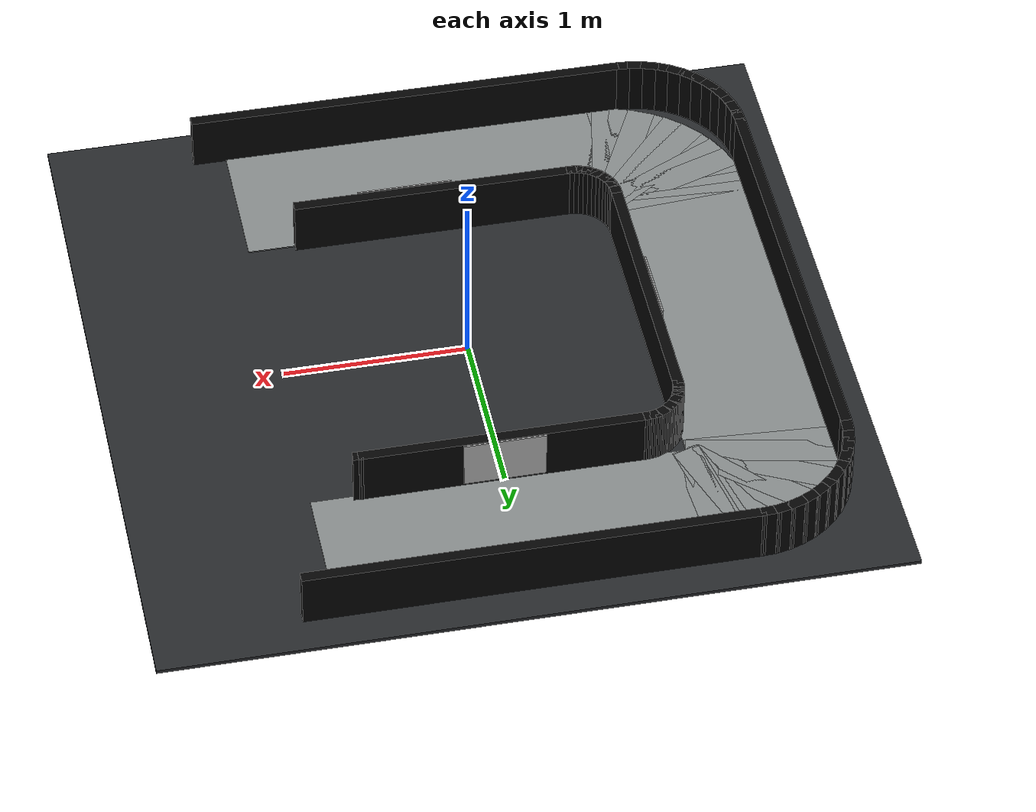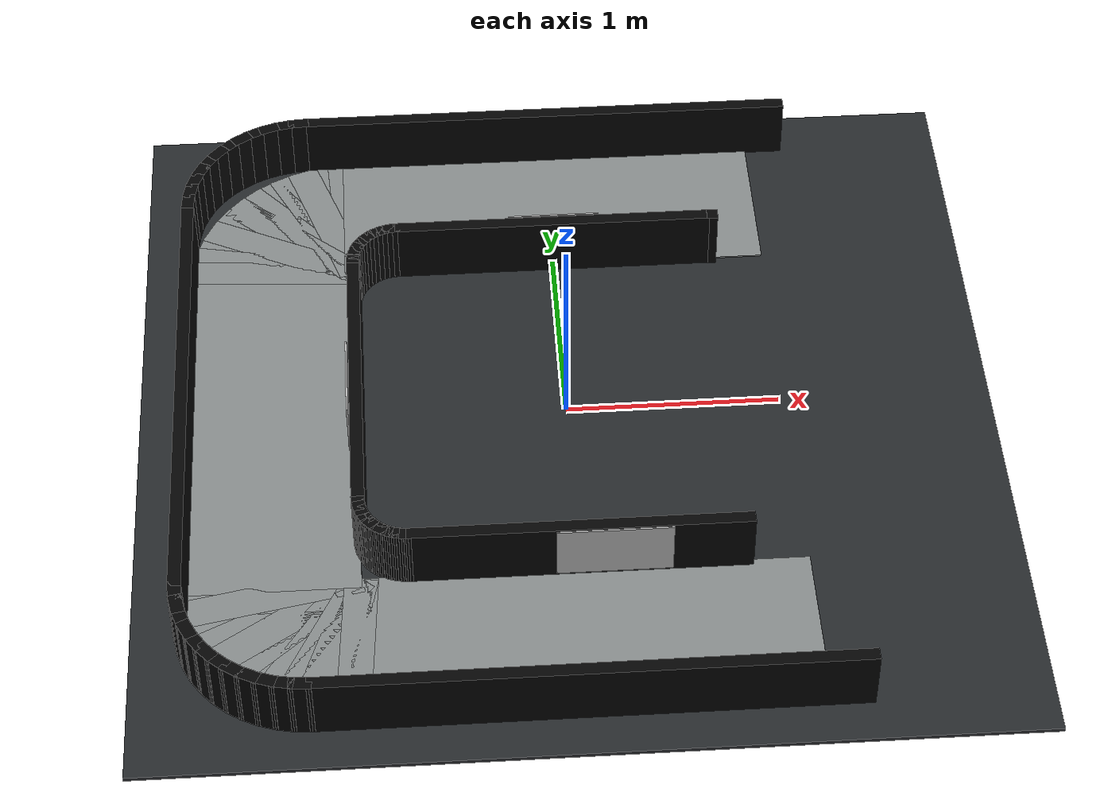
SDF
<sdf version="1.6">
 <world name="raicom_safe_city">
  <include><uri>model://sun</uri></include>
  <model name="safe_city_wall_track_80cm">
   <static>true</static>
   <link name="floor_4m">
    <pose>0.0000 0.0000 -0.0110 0 0 0.000000</pose>
    <collision name="collision"><geometry><box><size>4.0000 4.0000 0.0200</size></box></geometry></collision>
    <visual name="visual">
     <geometry><box><size>4.0000 4.0000 0.0200</size></box></geometry>
     <material><ambient>0.160 0.170 0.180 1.000</ambient><diffuse>0.160 0.170 0.180 1.000</diffuse></material>
    </visual>
   </link>
   <link name="road_tile_13">
    <pose>0.0000 1.3800 0.0020 0 0 3.141593</pose>
    <visual name="visual">
     <geometry><box><size>2.0600 0.8000 0.0080</size></box></geometry>
     <material><ambient>0.540 0.560 0.560 1.000</ambient><diffuse>0.540 0.560 0.560 1.000</diffuse></material>
    </visual>
   </link>
   <link name="road_tile_14">
    <pose>-1.0061 1.3783 0.0020 0 0 -3.076143</pose>
    <visual name="visual">
     <geometry><box><size>0.1523 0.8000 0.0080</size></box></geometry>
     <material><ambient>0.540 0.560 0.560 1.000</ambient><diffuse>0.540 0.560 0.560 1.000</diffuse></material>
    </visual>
   </link>
   <link name="road_tile_15">
    <pose>-1.0579 1.3715 0.0020 0 0 -2.945243</pose>
    <visual name="visual">
     <geometry><box><size>0.1523 0.8000 0.0080</size></box></geometry>
     <material><ambient>0.540 0.560 0.560 1.000</ambient><diffuse>0.540 0.560 0.560 1.000</diffuse></material>
    </visual>
   </link>
   <link name="road_tile_16">
    <pose>-1.1083 1.3580 0.0020 0 0 -2.814343</pose>
    <visual name="visual">
     <geometry><box><size>0.1523 0.8000 0.0080</size></box></geometry>
     <material><ambient>0.540 0.560 0.560 1.000</ambient><diffuse>0.540 0.560 0.560 1.000</diffuse></material>
    </visual>
   </link>
   <link name="road_tile_17">
    <pose>-1.1565 1.3380 0.0020 0 0 -2.683444</pose>
    <visual name="visual">
     <geometry><box><size>0.1523 0.8000 0.0080</size></box></geometry>
     <material><ambient>0.540 0.560 0.560 1.000</ambient><diffuse>0.540 0.560 0.560 1.000</diffuse></material>
    </visual>
   </link>
   <link name="road_tile_18">
    <pose>-1.2018 1.3119 0.0020 0 0 -2.552544</pose>
    <visual name="visual">
     <geometry><box><size>0.1523 0.8000 0.0080</size></box></geometry>
     <material><ambient>0.540 0.560 0.560 1.000</ambient><diffuse>0.540 0.560 0.560 1.000</diffuse></material>
    </visual>
   </link>
   <link name="road_tile_19">
    <pose>-1.2432 1.2801 0.0020 0 0 -2.421644</pose>
    <visual name="visual">
     <geometry><box><size>0.1523 0.8000 0.0080</size></box></geometry>
     <material><ambient>0.540 0.560 0.560 1.000</ambient><diffuse>0.540 0.560 0.560 1.000</diffuse></material>
    </visual>
   </link>
   <link name="road_tile_20">
    <pose>-1.2801 1.2432 0.0020 0 0 -2.290745</pose>
    <visual name="visual">
     <geometry><box><size>0.1523 0.8000 0.0080</size></box></geometry>
     <material><ambient>0.540 0.560 0.560 1.000</ambient><diffuse>0.540 0.560 0.560 1.000</diffuse></material>
    </visual>
   </link>
   <link name="road_tile_21">
    <pose>-1.3119 1.2018 0.0020 0 0 -2.159845</pose>
    <visual name="visual">
     <geometry><box><size>0.1523 0.8000 0.0080</size></box></geometry>
     <material><ambient>0.540 0.560 0.560 1.000</ambient><diffuse>0.540 0.560 0.560 1.000</diffuse></material>
    </visual>
   </link>
   <link name="road_tile_22">
    <pose>-1.3380 1.1565 0.0020 0 0 -2.028945</pose>
    <visual name="visual">
     <geometry><box><size>0.1523 0.8000 0.0080</size></box></geometry>
     <material><ambient>0.540 0.560 0.560 1.000</ambient><diffuse>0.540 0.560 0.560 1.000</diffuse></material>
    </visual>
   </link>
   <link name="road_tile_23">
    <pose>-1.3580 1.1083 0.0020 0 0 -1.898046</pose>
    <visual name="visual">
     <geometry><box><size>0.1523 0.8000 0.0080</size></box></geometry>
     <material><ambient>0.540 0.560 0.560 1.000</ambient><diffuse>0.540 0.560 0.560 1.000</diffuse></material>
    </visual>
   </link>
   <link name="road_tile_24">
    <pose>-1.3715 1.0579 0.0020 0 0 -1.767146</pose>
    <visual name="visual">
     <geometry><box><size>0.1523 0.8000 0.0080</size></box></geometry>
     <material><ambient>0.540 0.560 0.560 1.000</ambient><diffuse>0.540 0.560 0.560 1.000</diffuse></material>
    </visual>
   </link>
   <link name="road_tile_25">
    <pose>-1.3783 1.0061 0.0020 0 0 -1.636246</pose>
    <visual name="visual">
     <geometry><box><size>0.1523 0.8000 0.0080</size></box></geometry>
     <material><ambient>0.540 0.560 0.560 1.000</ambient><diffuse>0.540 0.560 0.560 1.000</diffuse></material>
    </visual>
   </link>
   <link name="road_tile_26">
    <pose>-1.3800 0.0000 0.0020 0 0 -1.570796</pose>
    <visual name="visual">
     <geometry><box><size>2.0600 0.8000 0.0080</size></box></geometry>
     <material><ambient>0.540 0.560 0.560 1.000</ambient><diffuse>0.540 0.560 0.560 1.000</diffuse></material>
    </visual>
   </link>
   <link name="road_tile_27">
    <pose>-1.3783 -1.0061 0.0020 0 0 -1.505346</pose>
    <visual name="visual">
     <geometry><box><size>0.1523 0.8000 0.0080</size></box></geometry>
     <material><ambient>0.540 0.560 0.560 1.000</ambient><diffuse>0.540 0.560 0.560 1.000</diffuse></material>
    </visual>
   </link>
   <link name="road_tile_28">
    <pose>-1.3715 -1.0579 0.0020 0 0 -1.374447</pose>
    <visual name="visual">
     <geometry><box><size>0.1523 0.8000 0.0080</size></box></geometry>
     <material><ambient>0.540 0.560 0.560 1.000</ambient><diffuse>0.540 0.560 0.560 1.000</diffuse></material>
    </visual>
   </link>
   <link name="road_tile_29">
    <pose>-1.3580 -1.1083 0.0020 0 0 -1.243547</pose>
    <visual name="visual">
     <geometry><box><size>0.1523 0.8000 0.0080</size></box></geometry>
     <material><ambient>0.540 0.560 0.560 1.000</ambient><diffuse>0.540 0.560 0.560 1.000</diffuse></material>
    </visual>
   </link>
   <link name="road_tile_30">
    <pose>-1.3380 -1.1565 0.0020 0 0 -1.112647</pose>
    <visual name="visual">
     <geometry><box><size>0.1523 0.8000 0.0080</size></box></geometry>
     <material><ambient>0.540 0.560 0.560 1.000</ambient><diffuse>0.540 0.560 0.560 1.000</diffuse></material>
    </visual>
   </link>
   <link name="road_tile_31">
    <pose>-1.3119 -1.2018 0.0020 0 0 -0.981748</pose>
    <visual name="visual">
     <geometry><box><size>0.1523 0.8000 0.0080</size></box></geometry>
     <material><ambient>0.540 0.560 0.560 1.000</ambient><diffuse>0.540 0.560 0.560 1.000</diffuse></material>
    </visual>
   </link>
   <link name="road_tile_32">
    <pose>-1.2801 -1.2432 0.0020 0 0 -0.850848</pose>
    <visual name="visual">
     <geometry><box><size>0.1523 0.8000 0.0080</size></box></geometry>
     <material><ambient>0.540 0.560 0.560 1.000</ambient><diffuse>0.540 0.560 0.560 1.000</diffuse></material>
    </visual>
   </link>
   <link name="road_tile_33">
    <pose>-1.2432 -1.2801 0.0020 0 0 -0.719948</pose>
    <visual name="visual">
     <geometry><box><size>0.1523 0.8000 0.0080</size></box></geometry>
     <material><ambient>0.540 0.560 0.560 1.000</ambient><diffuse>0.540 0.560 0.560 1.000</diffuse></material>
    </visual>
   </link>
   <link name="road_tile_34">
    <pose>-1.2018 -1.3119 0.0020 0 0 -0.589049</pose>
    <visual name="visual">
     <geometry><box><size>0.1523 0.8000 0.0080</size></box></geometry>
     <material><ambient>0.540 0.560 0.560 1.000</ambient><diffuse>0.540 0.560 0.560 1.000</diffuse></material>
    </visual>
   </link>
   <link name="road_tile_35">
    <pose>-1.1565 -1.3380 0.0020 0 0 -0.458149</pose>
    <visual name="visual">
     <geometry><box><size>0.1523 0.8000 0.0080</size></box></geometry>
     <material><ambient>0.540 0.560 0.560 1.000</ambient><diffuse>0.540 0.560 0.560 1.000</diffuse></material>
    </visual>
   </link>
   <link name="road_tile_36">
    <pose>-1.1083 -1.3580 0.0020 0 0 -0.327249</pose>
    <visual name="visual">
     <geometry><box><size>0.1523 0.8000 0.0080</size></box></geometry>
     <material><ambient>0.540 0.560 0.560 1.000</ambient><diffuse>0.540 0.560 0.560 1.000</diffuse></material>
    </visual>
   </link>
   <link name="road_tile_37">
    <pose>-1.0579 -1.3715 0.0020 0 0 -0.196350</pose>
    <visual name="visual">
     <geometry><box><size>0.1523 0.8000 0.0080</size></box></geometry>
     <material><ambient>0.540 0.560 0.560 1.000</ambient><diffuse>0.540 0.560 0.560 1.000</diffuse></material>
    </visual>
   </link>
   <link name="road_tile_38">
    <pose>-1.0061 -1.3783 0.0020 0 0 -0.065450</pose>
    <visual name="visual">
     <geometry><box><size>0.1523 0.8000 0.0080</size></box></geometry>
     <material><ambient>0.540 0.560 0.560 1.000</ambient><diffuse>0.540 0.560 0.560 1.000</diffuse></material>
    </visual>
   </link>
   <link name="road_tile_39">
    <pose>-0.0000 -1.3800 0.0020 0 0 0.000000</pose>
    <visual name="visual">
     <geometry><box><size>2.0600 0.8000 0.0080</size></box></geometry>
     <material><ambient>0.540 0.560 0.560 1.000</ambient><diffuse>0.540 0.560 0.560 1.000</diffuse></material>
    </visual>
   </link>
   <link name="photo_trash_food_waste">
    <pose>0.0000 1.0200 0.1650 0 0 0.000000</pose>
    <visual name="visual">
     <geometry><box><size>0.4400 0.0080 0.2700</size></box></geometry>
     <material>
      <script>
       <uri>model://safe_city_photo_targets/materials/scripts</uri>
       <uri>model://safe_city_photo_targets/materials/textures</uri>
       <name>SafeCityPhotoTargets/TrashFoodWaste</name>
      </script>
     </material>
    </visual>
   </link>
   <link name="photo_crowd_people">
    <pose>-1.0200 0.0000 0.1650 0 0 1.570796</pose>
    <visual name="visual">
     <geometry><box><size>0.4400 0.0080 0.2700</size></box></geometry>
     <material>
      <script>
       <uri>model://safe_city_photo_targets/materials/scripts</uri>
       <uri>model://safe_city_photo_targets/materials/textures</uri>
       <name>SafeCityPhotoTargets/CrowdPeople</name>
      </script>
     </material>
    </visual>
   </link>
   <link name="photo_building_fire">
    <pose>0.1500 -1.0200 0.1650 0 0 0.000000</pose>
    <visual name="visual">
     <geometry><box><size>0.5200 0.0080 0.2700</size></box></geometry>
     <material>
      <script>
       <uri>model://safe_city_photo_targets/materials/scripts</uri>
       <uri>model://safe_city_photo_targets/materials/textures</uri>
       <name>SafeCityPhotoTargets/BuildingFire</name>
      </script>
     </material>
    </visual>
   </link>
   <link name="track_wall_13">
    <pose>0.0000 1.7800 0.1500 0 0 3.141593</pose>
    <collision name="collision"><geometry><box><size>2.4250 0.0600 0.3000</size></box></geometry></collision>
    <visual name="visual">
     <geometry><box><size>2.4250 0.0600 0.3000</size></box></geometry>
     <material><ambient>0.020 0.020 0.020 1.000</ambient><diffuse>0.020 0.020 0.020 1.000</diffuse></material>
    </visual>
   </link>
   <link name="track_wall_14">
    <pose>-1.2379 1.7775 0.1500 0 0 -3.076143</pose>
    <collision name="collision"><geometry><box><size>0.1009 0.0600 0.3000</size></box></geometry></collision>
    <visual name="visual">
     <geometry><box><size>0.1009 0.0600 0.3000</size></box></geometry>
     <material><ambient>0.020 0.020 0.020 1.000</ambient><diffuse>0.020 0.020 0.020 1.000</diffuse></material>
    </visual>
   </link>
   <link name="track_wall_15">
    <pose>-1.3129 1.7676 0.1500 0 0 -2.945243</pose>
    <collision name="collision"><geometry><box><size>0.1009 0.0600 0.3000</size></box></geometry></collision>
    <visual name="visual">
     <geometry><box><size>0.1009 0.0600 0.3000</size></box></geometry>
     <material><ambient>0.020 0.020 0.020 1.000</ambient><diffuse>0.020 0.020 0.020 1.000</diffuse></material>
    </visual>
   </link>
   <link name="track_wall_16">
    <pose>-1.3860 1.7480 0.1500 0 0 -2.814343</pose>
    <collision name="collision"><geometry><box><size>0.1009 0.0600 0.3000</size></box></geometry></collision>
    <visual name="visual">
     <geometry><box><size>0.1009 0.0600 0.3000</size></box></geometry>
     <material><ambient>0.020 0.020 0.020 1.000</ambient><diffuse>0.020 0.020 0.020 1.000</diffuse></material>
    </visual>
   </link>
   <link name="track_wall_17">
    <pose>-1.4560 1.7191 0.1500 0 0 -2.683444</pose>
    <collision name="collision"><geometry><box><size>0.1009 0.0600 0.3000</size></box></geometry></collision>
    <visual name="visual">
     <geometry><box><size>0.1009 0.0600 0.3000</size></box></geometry>
     <material><ambient>0.020 0.020 0.020 1.000</ambient><diffuse>0.020 0.020 0.020 1.000</diffuse></material>
    </visual>
   </link>
   <link name="track_wall_18">
    <pose>-1.5215 1.6812 0.1500 0 0 -2.552544</pose>
    <collision name="collision"><geometry><box><size>0.1009 0.0600 0.3000</size></box></geometry></collision>
    <visual name="visual">
     <geometry><box><size>0.1009 0.0600 0.3000</size></box></geometry>
     <material><ambient>0.020 0.020 0.020 1.000</ambient><diffuse>0.020 0.020 0.020 1.000</diffuse></material>
    </visual>
   </link>
   <link name="track_wall_19">
    <pose>-1.5816 1.6351 0.1500 0 0 -2.421644</pose>
    <collision name="collision"><geometry><box><size>0.1009 0.0600 0.3000</size></box></geometry></collision>
    <visual name="visual">
     <geometry><box><size>0.1009 0.0600 0.3000</size></box></geometry>
     <material><ambient>0.020 0.020 0.020 1.000</ambient><diffuse>0.020 0.020 0.020 1.000</diffuse></material>
    </visual>
   </link>
   <link name="track_wall_20">
    <pose>-1.6351 1.5816 0.1500 0 0 -2.290745</pose>
    <collision name="collision"><geometry><box><size>0.1009 0.0600 0.3000</size></box></geometry></collision>
    <visual name="visual">
     <geometry><box><size>0.1009 0.0600 0.3000</size></box></geometry>
     <material><ambient>0.020 0.020 0.020 1.000</ambient><diffuse>0.020 0.020 0.020 1.000</diffuse></material>
    </visual>
   </link>
   <link name="track_wall_21">
    <pose>-1.6812 1.5215 0.1500 0 0 -2.159845</pose>
    <collision name="collision"><geometry><box><size>0.1009 0.0600 0.3000</size></box></geometry></collision>
    <visual name="visual">
     <geometry><box><size>0.1009 0.0600 0.3000</size></box></geometry>
     <material><ambient>0.020 0.020 0.020 1.000</ambient><diffuse>0.020 0.020 0.020 1.000</diffuse></material>
    </visual>
   </link>
   <link name="track_wall_22">
    <pose>-1.7191 1.4560 0.1500 0 0 -2.028945</pose>
    <collision name="collision"><geometry><box><size>0.1009 0.0600 0.3000</size></box></geometry></collision>
    <visual name="visual">
     <geometry><box><size>0.1009 0.0600 0.3000</size></box></geometry>
     <material><ambient>0.020 0.020 0.020 1.000</ambient><diffuse>0.020 0.020 0.020 1.000</diffuse></material>
    </visual>
   </link>
   <link name="track_wall_23">
    <pose>-1.7480 1.3860 0.1500 0 0 -1.898046</pose>
    <collision name="collision"><geometry><box><size>0.1009 0.0600 0.3000</size></box></geometry></collision>
    <visual name="visual">
     <geometry><box><size>0.1009 0.0600 0.3000</size></box></geometry>
     <material><ambient>0.020 0.020 0.020 1.000</ambient><diffuse>0.020 0.020 0.020 1.000</diffuse></material>
    </visual>
   </link>
   <link name="track_wall_24">
    <pose>-1.7676 1.3129 0.1500 0 0 -1.767146</pose>
    <collision name="collision"><geometry><box><size>0.1009 0.0600 0.3000</size></box></geometry></collision>
    <visual name="visual">
     <geometry><box><size>0.1009 0.0600 0.3000</size></box></geometry>
     <material><ambient>0.020 0.020 0.020 1.000</ambient><diffuse>0.020 0.020 0.020 1.000</diffuse></material>
    </visual>
   </link>
   <link name="track_wall_25">
    <pose>-1.7775 1.2379 0.1500 0 0 -1.636246</pose>
    <collision name="collision"><geometry><box><size>0.1009 0.0600 0.3000</size></box></geometry></collision>
    <visual name="visual">
     <geometry><box><size>0.1009 0.0600 0.3000</size></box></geometry>
     <material><ambient>0.020 0.020 0.020 1.000</ambient><diffuse>0.020 0.020 0.020 1.000</diffuse></material>
    </visual>
   </link>
   <link name="track_wall_26">
    <pose>-1.7800 0.0000 0.1500 0 0 -1.570796</pose>
    <collision name="collision"><geometry><box><size>2.4250 0.0600 0.3000</size></box></geometry></collision>
    <visual name="visual">
     <geometry><box><size>2.4250 0.0600 0.3000</size></box></geometry>
     <material><ambient>0.020 0.020 0.020 1.000</ambient><diffuse>0.020 0.020 0.020 1.000</diffuse></material>
    </visual>
   </link>
   <link name="track_wall_27">
    <pose>-1.7775 -1.2379 0.1500 0 0 -1.505346</pose>
    <collision name="collision"><geometry><box><size>0.1009 0.0600 0.3000</size></box></geometry></collision>
    <visual name="visual">
     <geometry><box><size>0.1009 0.0600 0.3000</size></box></geometry>
     <material><ambient>0.020 0.020 0.020 1.000</ambient><diffuse>0.020 0.020 0.020 1.000</diffuse></material>
    </visual>
   </link>
   <link name="track_wall_28">
    <pose>-1.7676 -1.3129 0.1500 0 0 -1.374447</pose>
    <collision name="collision"><geometry><box><size>0.1009 0.0600 0.3000</size></box></geometry></collision>
    <visual name="visual">
     <geometry><box><size>0.1009 0.0600 0.3000</size></box></geometry>
     <material><ambient>0.020 0.020 0.020 1.000</ambient><diffuse>0.020 0.020 0.020 1.000</diffuse></material>
    </visual>
   </link>
   <link name="track_wall_29">
    <pose>-1.7480 -1.3860 0.1500 0 0 -1.243547</pose>
    <collision name="collision"><geometry><box><size>0.1009 0.0600 0.3000</size></box></geometry></collision>
    <visual name="visual">
     <geometry><box><size>0.1009 0.0600 0.3000</size></box></geometry>
     <material><ambient>0.020 0.020 0.020 1.000</ambient><diffuse>0.020 0.020 0.020 1.000</diffuse></material>
    </visual>
   </link>
   <link name="track_wall_30">
    <pose>-1.7191 -1.4560 0.1500 0 0 -1.112647</pose>
    <collision name="collision"><geometry><box><size>0.1009 0.0600 0.3000</size></box></geometry></collision>
    <visual name="visual">
     <geometry><box><size>0.1009 0.0600 0.3000</size></box></geometry>
     <material><ambient>0.020 0.020 0.020 1.000</ambient><diffuse>0.020 0.020 0.020 1.000</diffuse></material>
    </visual>
   </link>
   <link name="track_wall_31">
    <pose>-1.6812 -1.5215 0.1500 0 0 -0.981748</pose>
    <collision name="collision"><geometry><box><size>0.1009 0.0600 0.3000</size></box></geometry></collision>
    <visual name="visual">
     <geometry><box><size>0.1009 0.0600 0.3000</size></box></geometry>
     <material><ambient>0.020 0.020 0.020 1.000</ambient><diffuse>0.020 0.020 0.020 1.000</diffuse></material>
    </visual>
   </link>
   <link name="track_wall_32">
    <pose>-1.6351 -1.5816 0.1500 0 0 -0.850848</pose>
    <collision name="collision"><geometry><box><size>0.1009 0.0600 0.3000</size></box></geometry></collision>
    <visual name="visual">
     <geometry><box><size>0.1009 0.0600 0.3000</size></box></geometry>
     <material><ambient>0.020 0.020 0.020 1.000</ambient><diffuse>0.020 0.020 0.020 1.000</diffuse></material>
    </visual>
   </link>
   <link name="track_wall_33">
    <pose>-1.5816 -1.6351 0.1500 0 0 -0.719948</pose>
    <collision name="collision"><geometry><box><size>0.1009 0.0600 0.3000</size></box></geometry></collision>
    <visual name="visual">
     <geometry><box><size>0.1009 0.0600 0.3000</size></box></geometry>
     <material><ambient>0.020 0.020 0.020 1.000</ambient><diffuse>0.020 0.020 0.020 1.000</diffuse></material>
    </visual>
   </link>
   <link name="track_wall_34">
    <pose>-1.5215 -1.6812 0.1500 0 0 -0.589049</pose>
    <collision name="collision"><geometry><box><size>0.1009 0.0600 0.3000</size></box></geometry></collision>
    <visual name="visual">
     <geometry><box><size>0.1009 0.0600 0.3000</size></box></geometry>
     <material><ambient>0.020 0.020 0.020 1.000</ambient><diffuse>0.020 0.020 0.020 1.000</diffuse></material>
    </visual>
   </link>
   <link name="track_wall_35">
    <pose>-1.4560 -1.7191 0.1500 0 0 -0.458149</pose>
    <collision name="collision"><geometry><box><size>0.1009 0.0600 0.3000</size></box></geometry></collision>
    <visual name="visual">
     <geometry><box><size>0.1009 0.0600 0.3000</size></box></geometry>
     <material><ambient>0.020 0.020 0.020 1.000</ambient><diffuse>0.020 0.020 0.020 1.000</diffuse></material>
    </visual>
   </link>
   <link name="track_wall_36">
    <pose>-1.3860 -1.7480 0.1500 0 0 -0.327249</pose>
    <collision name="collision"><geometry><box><size>0.1009 0.0600 0.3000</size></box></geometry></collision>
    <visual name="visual">
     <geometry><box><size>0.1009 0.0600 0.3000</size></box></geometry>
     <material><ambient>0.020 0.020 0.020 1.000</ambient><diffuse>0.020 0.020 0.020 1.000</diffuse></material>
    </visual>
   </link>
   <link name="track_wall_37">
    <pose>-1.3129 -1.7676 0.1500 0 0 -0.196350</pose>
    <collision name="collision"><geometry><box><size>0.1009 0.0600 0.3000</size></box></geometry></collision>
    <visual name="visual">
     <geometry><box><size>0.1009 0.0600 0.3000</size></box></geometry>
     <material><ambient>0.020 0.020 0.020 1.000</ambient><diffuse>0.020 0.020 0.020 1.000</diffuse></material>
    </visual>
   </link>
   <link name="track_wall_38">
    <pose>-1.2379 -1.7775 0.1500 0 0 -0.065450</pose>
    <collision name="collision"><geometry><box><size>0.1009 0.0600 0.3000</size></box></geometry></collision>
    <visual name="visual">
     <geometry><box><size>0.1009 0.0600 0.3000</size></box></geometry>
     <material><ambient>0.020 0.020 0.020 1.000</ambient><diffuse>0.020 0.020 0.020 1.000</diffuse></material>
    </visual>
   </link>
   <link name="track_wall_39">
    <pose>0.0000 -1.7800 0.1500 0 0 0.000000</pose>
    <collision name="collision"><geometry><box><size>2.4250 0.0600 0.3000</size></box></geometry></collision>
    <visual name="visual">
     <geometry><box><size>2.4250 0.0600 0.3000</size></box></geometry>
     <material><ambient>0.020 0.020 0.020 1.000</ambient><diffuse>0.020 0.020 0.020 1.000</diffuse></material>
    </visual>
   </link>
   <link name="track_wall_64">
    <pose>0.7744 0.9791 0.1500 0 0 3.076143</pose>
    <collision name="collision"><geometry><box><size>0.0538 0.0600 0.3000</size></box></geometry></collision>
    <visual name="visual">
     <geometry><box><size>0.0538 0.0600 0.3000</size></box></geometry>
     <material><ambient>0.020 0.020 0.020 1.000</ambient><diffuse>0.020 0.020 0.020 1.000</diffuse></material>
    </visual>
   </link>
   <link name="track_wall_65">
    <pose>0.0000 0.9800 0.1500 0 0 3.141593</pose>
    <collision name="collision"><geometry><box><size>1.5450 0.0600 0.3000</size></box></geometry></collision>
    <visual name="visual">
     <geometry><box><size>1.5450 0.0600 0.3000</size></box></geometry>
     <material><ambient>0.020 0.020 0.020 1.000</ambient><diffuse>0.020 0.020 0.020 1.000</diffuse></material>
    </visual>
   </link>
   <link name="track_wall_66">
    <pose>-0.7744 0.9791 0.1500 0 0 -3.076143</pose>
    <collision name="collision"><geometry><box><size>0.0538 0.0600 0.3000</size></box></geometry></collision>
    <visual name="visual">
     <geometry><box><size>0.0538 0.0600 0.3000</size></box></geometry>
     <material><ambient>0.020 0.020 0.020 1.000</ambient><diffuse>0.020 0.020 0.020 1.000</diffuse></material>
    </visual>
   </link>
   <link name="track_wall_67">
    <pose>-0.8028 0.9753 0.1500 0 0 -2.945243</pose>
    <collision name="collision"><geometry><box><size>0.0538 0.0600 0.3000</size></box></geometry></collision>
    <visual name="visual">
     <geometry><box><size>0.0538 0.0600 0.3000</size></box></geometry>
     <material><ambient>0.020 0.020 0.020 1.000</ambient><diffuse>0.020 0.020 0.020 1.000</diffuse></material>
    </visual>
   </link>
   <link name="track_wall_68">
    <pose>-0.8306 0.9679 0.1500 0 0 -2.814343</pose>
    <collision name="collision"><geometry><box><size>0.0538 0.0600 0.3000</size></box></geometry></collision>
    <visual name="visual">
     <geometry><box><size>0.0538 0.0600 0.3000</size></box></geometry>
     <material><ambient>0.020 0.020 0.020 1.000</ambient><diffuse>0.020 0.020 0.020 1.000</diffuse></material>
    </visual>
   </link>
   <link name="track_wall_69">
    <pose>-0.8571 0.9569 0.1500 0 0 -2.683444</pose>
    <collision name="collision"><geometry><box><size>0.0538 0.0600 0.3000</size></box></geometry></collision>
    <visual name="visual">
     <geometry><box><size>0.0538 0.0600 0.3000</size></box></geometry>
     <material><ambient>0.020 0.020 0.020 1.000</ambient><diffuse>0.020 0.020 0.020 1.000</diffuse></material>
    </visual>
   </link>
   <link name="track_wall_70">
    <pose>-0.8820 0.9425 0.1500 0 0 -2.552544</pose>
    <collision name="collision"><geometry><box><size>0.0538 0.0600 0.3000</size></box></geometry></collision>
    <visual name="visual">
     <geometry><box><size>0.0538 0.0600 0.3000</size></box></geometry>
     <material><ambient>0.020 0.020 0.020 1.000</ambient><diffuse>0.020 0.020 0.020 1.000</diffuse></material>
    </visual>
   </link>
   <link name="track_wall_71">
    <pose>-0.9047 0.9251 0.1500 0 0 -2.421644</pose>
    <collision name="collision"><geometry><box><size>0.0538 0.0600 0.3000</size></box></geometry></collision>
    <visual name="visual">
     <geometry><box><size>0.0538 0.0600 0.3000</size></box></geometry>
     <material><ambient>0.020 0.020 0.020 1.000</ambient><diffuse>0.020 0.020 0.020 1.000</diffuse></material>
    </visual>
   </link>
   <link name="track_wall_72">
    <pose>-0.9251 0.9047 0.1500 0 0 -2.290745</pose>
    <collision name="collision"><geometry><box><size>0.0538 0.0600 0.3000</size></box></geometry></collision>
    <visual name="visual">
     <geometry><box><size>0.0538 0.0600 0.3000</size></box></geometry>
     <material><ambient>0.020 0.020 0.020 1.000</ambient><diffuse>0.020 0.020 0.020 1.000</diffuse></material>
    </visual>
   </link>
   <link name="track_wall_73">
    <pose>-0.9425 0.8820 0.1500 0 0 -2.159845</pose>
    <collision name="collision"><geometry><box><size>0.0538 0.0600 0.3000</size></box></geometry></collision>
    <visual name="visual">
     <geometry><box><size>0.0538 0.0600 0.3000</size></box></geometry>
     <material><ambient>0.020 0.020 0.020 1.000</ambient><diffuse>0.020 0.020 0.020 1.000</diffuse></material>
    </visual>
   </link>
   <link name="track_wall_74">
    <pose>-0.9569 0.8571 0.1500 0 0 -2.028945</pose>
    <collision name="collision"><geometry><box><size>0.0538 0.0600 0.3000</size></box></geometry></collision>
    <visual name="visual">
     <geometry><box><size>0.0538 0.0600 0.3000</size></box></geometry>
     <material><ambient>0.020 0.020 0.020 1.000</ambient><diffuse>0.020 0.020 0.020 1.000</diffuse></material>
    </visual>
   </link>
   <link name="track_wall_75">
    <pose>-0.9679 0.8306 0.1500 0 0 -1.898046</pose>
    <collision name="collision"><geometry><box><size>0.0538 0.0600 0.3000</size></box></geometry></collision>
    <visual name="visual">
     <geometry><box><size>0.0538 0.0600 0.3000</size></box></geometry>
     <material><ambient>0.020 0.020 0.020 1.000</ambient><diffuse>0.020 0.020 0.020 1.000</diffuse></material>
    </visual>
   </link>
   <link name="track_wall_76">
    <pose>-0.9753 0.8028 0.1500 0 0 -1.767146</pose>
    <collision name="collision"><geometry><box><size>0.0538 0.0600 0.3000</size></box></geometry></collision>
    <visual name="visual">
     <geometry><box><size>0.0538 0.0600 0.3000</size></box></geometry>
     <material><ambient>0.020 0.020 0.020 1.000</ambient><diffuse>0.020 0.020 0.020 1.000</diffuse></material>
    </visual>
   </link>
   <link name="track_wall_77">
    <pose>-0.9791 0.7744 0.1500 0 0 -1.636246</pose>
    <collision name="collision"><geometry><box><size>0.0538 0.0600 0.3000</size></box></geometry></collision>
    <visual name="visual">
     <geometry><box><size>0.0538 0.0600 0.3000</size></box></geometry>
     <material><ambient>0.020 0.020 0.020 1.000</ambient><diffuse>0.020 0.020 0.020 1.000</diffuse></material>
    </visual>
   </link>
   <link name="track_wall_78">
    <pose>-0.9800 0.0000 0.1500 0 0 -1.570796</pose>
    <collision name="collision"><geometry><box><size>1.5450 0.0600 0.3000</size></box></geometry></collision>
    <visual name="visual">
     <geometry><box><size>1.5450 0.0600 0.3000</size></box></geometry>
     <material><ambient>0.020 0.020 0.020 1.000</ambient><diffuse>0.020 0.020 0.020 1.000</diffuse></material>
    </visual>
   </link>
   <link name="track_wall_79">
    <pose>-0.9791 -0.7744 0.1500 0 0 -1.505346</pose>
    <collision name="collision"><geometry><box><size>0.0538 0.0600 0.3000</size></box></geometry></collision>
    <visual name="visual">
     <geometry><box><size>0.0538 0.0600 0.3000</size></box></geometry>
     <material><ambient>0.020 0.020 0.020 1.000</ambient><diffuse>0.020 0.020 0.020 1.000</diffuse></material>
    </visual>
   </link>
   <link name="track_wall_80">
    <pose>-0.9753 -0.8028 0.1500 0 0 -1.374447</pose>
    <collision name="collision"><geometry><box><size>0.0538 0.0600 0.3000</size></box></geometry></collision>
    <visual name="visual">
     <geometry><box><size>0.0538 0.0600 0.3000</size></box></geometry>
     <material><ambient>0.020 0.020 0.020 1.000</ambient><diffuse>0.020 0.020 0.020 1.000</diffuse></material>
    </visual>
   </link>
   <link name="track_wall_81">
    <pose>-0.9679 -0.8306 0.1500 0 0 -1.243547</pose>
    <collision name="collision"><geometry><box><size>0.0538 0.0600 0.3000</size></box></geometry></collision>
    <visual name="visual">
     <geometry><box><size>0.0538 0.0600 0.3000</size></box></geometry>
     <material><ambient>0.020 0.020 0.020 1.000</ambient><diffuse>0.020 0.020 0.020 1.000</diffuse></material>
    </visual>
   </link>
   <link name="track_wall_82">
    <pose>-0.9569 -0.8571 0.1500 0 0 -1.112647</pose>
    <collision name="collision"><geometry><box><size>0.0538 0.0600 0.3000</size></box></geometry></collision>
    <visual name="visual">
     <geometry><box><size>0.0538 0.0600 0.3000</size></box></geometry>
     <material><ambient>0.020 0.020 0.020 1.000</ambient><diffuse>0.020 0.020 0.020 1.000</diffuse></material>
    </visual>
   </link>
   <link name="track_wall_83">
    <pose>-0.9425 -0.8820 0.1500 0 0 -0.981748</pose>
    <collision name="collision"><geometry><box><size>0.0538 0.0600 0.3000</size></box></geometry></collision>
    <visual name="visual">
     <geometry><box><size>0.0538 0.0600 0.3000</size></box></geometry>
     <material><ambient>0.020 0.020 0.020 1.000</ambient><diffuse>0.020 0.020 0.020 1.000</diffuse></material>
    </visual>
   </link>
   <link name="track_wall_84">
    <pose>-0.9251 -0.9047 0.1500 0 0 -0.850848</pose>
    <collision name="collision"><geometry><box><size>0.0538 0.0600 0.3000</size></box></geometry></collision>
    <visual name="visual">
     <geometry><box><size>0.0538 0.0600 0.3000</size></box></geometry>
     <material><ambient>0.020 0.020 0.020 1.000</ambient><diffuse>0.020 0.020 0.020 1.000</diffuse></material>
    </visual>
   </link>
   <link name="track_wall_85">
    <pose>-0.9047 -0.9251 0.1500 0 0 -0.719948</pose>
    <collision name="collision"><geometry><box><size>0.0538 0.0600 0.3000</size></box></geometry></collision>
    <visual name="visual">
     <geometry><box><size>0.0538 0.0600 0.3000</size></box></geometry>
     <material><ambient>0.020 0.020 0.020 1.000</ambient><diffuse>0.020 0.020 0.020 1.000</diffuse></material>
    </visual>
   </link>
   <link name="track_wall_86">
    <pose>-0.8820 -0.9425 0.1500 0 0 -0.589049</pose>
    <collision name="collision"><geometry><box><size>0.0538 0.0600 0.3000</size></box></geometry></collision>
    <visual name="visual">
     <geometry><box><size>0.0538 0.0600 0.3000</size></box></geometry>
     <material><ambient>0.020 0.020 0.020 1.000</ambient><diffuse>0.020 0.020 0.020 1.000</diffuse></material>
    </visual>
   </link>
   <link name="track_wall_87">
    <pose>-0.8571 -0.9569 0.1500 0 0 -0.458149</pose>
    <collision name="collision"><geometry><box><size>0.0538 0.0600 0.3000</size></box></geometry></collision>
    <visual name="visual">
     <geometry><box><size>0.0538 0.0600 0.3000</size></box></geometry>
     <material><ambient>0.020 0.020 0.020 1.000</ambient><diffuse>0.020 0.020 0.020 1.000</diffuse></material>
    </visual>
   </link>
   <link name="track_wall_88">
    <pose>-0.8306 -0.9679 0.1500 0 0 -0.327249</pose>
    <collision name="collision"><geometry><box><size>0.0538 0.0600 0.3000</size></box></geometry></collision>
    <visual name="visual">
     <geometry><box><size>0.0538 0.0600 0.3000</size></box></geometry>
     <material><ambient>0.020 0.020 0.020 1.000</ambient><diffuse>0.020 0.020 0.020 1.000</diffuse></material>
    </visual>
   </link>
   <link name="track_wall_89">
    <pose>-0.8028 -0.9753 0.1500 0 0 -0.196350</pose>
    <collision name="collision"><geometry><box><size>0.0538 0.0600 0.3000</size></box></geometry></collision>
    <visual name="visual">
     <geometry><box><size>0.0538 0.0600 0.3000</size></box></geometry>
     <material><ambient>0.020 0.020 0.020 1.000</ambient><diffuse>0.020 0.020 0.020 1.000</diffuse></material>
    </visual>
   </link>
   <link name="track_wall_90">
    <pose>-0.7744 -0.9791 0.1500 0 0 -0.065450</pose>
    <collision name="collision"><geometry><box><size>0.0538 0.0600 0.3000</size></box></geometry></collision>
    <visual name="visual">
     <geometry><box><size>0.0538 0.0600 0.3000</size></box></geometry>
     <material><ambient>0.020 0.020 0.020 1.000</ambient><diffuse>0.020 0.020 0.020 1.000</diffuse></material>
    </visual>
   </link>
   <link name="track_wall_91">
    <pose>0.0000 -0.9800 0.1500 0 0 0.000000</pose>
    <collision name="collision"><geometry><box><size>1.5450 0.0600 0.3000</size></box></geometry></collision>
    <visual name="visual">
     <geometry><box><size>1.5450 0.0600 0.3000</size></box></geometry>
     <material><ambient>0.020 0.020 0.020 1.000</ambient><diffuse>0.020 0.020 0.020 1.000</diffuse></material>
    </visual>
   </link>
  </model>
 </world>
</sdf>
